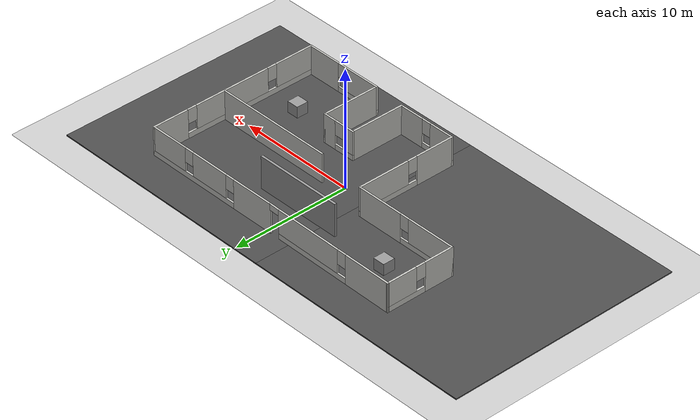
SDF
<sdf version="1.6">
 <world name="default">
  <light name="sun" type="directional">
   <pose>0 0 10 0 -0 0</pose>
   <diffuse>0.8 0.8 0.8 1</diffuse>
   <specular>0.1 0.1 0.1 1</specular>
   <attenuation>
    <range>1000</range>
    <constant>0.9</constant>
    <linear>0.01</linear>
    <quadratic>0.001</quadratic>
   </attenuation>
   <direction>-0.5 0.5 -1</direction>
  </light>
  <model name="ground_plane">
   <static>1</static>
   <link name="link">
    <collision name="collision">
     <geometry><plane><normal>0 0 1</normal><size>100 100</size></plane></geometry>
     <surface><friction><ode><mu>100</mu><mu2>50</mu2></ode></friction></surface>
    </collision>
    <visual name="visual">
     <cast_shadows>0</cast_shadows>
     <geometry><plane><normal>0 0 1</normal><size>100 100</size></plane></geometry>
     <material>
      <script><uri>file://media/materials/scripts/gazebo.material</uri><name>Gazebo/Grey</name></script>
     </material>
    </visual>
   </link>
  </model>
  <gravity>0 0 -9.8</gravity>
  <magnetic_field>6e-06 2.3e-05 -4.2e-05</magnetic_field>
  <atmosphere type="adiabatic"/>
  <physics name="default_physics" default="0" type="ode">
   <max_step_size>0.001</max_step_size>
   <real_time_factor>1</real_time_factor>
   <real_time_update_rate>1000</real_time_update_rate>
  </physics>
  <scene><ambient>0.4 0.4 0.4 1</ambient><background>0.7 0.7 0.7 1</background><shadows>1</shadows></scene>
  <spherical_coordinates>
   <surface_model>EARTH_WGS84</surface_model>
   <latitude_deg>0</latitude_deg>
   <longitude_deg>0</longitude_deg>
   <elevation>0</elevation>
   <heading_deg>0</heading_deg>
  </spherical_coordinates>
  <model name="room2">
   <pose>-0.198338 -0.063286 0 0 -0 0</pose>
   <link name="Wall_1">
    <pose>5.90032 7.24968 0 0 -0 0</pose>
    <visual name="Wall_1_Visual_0">
     <pose>-4.22159 0 1.25 0 -0 0</pose>
     <geometry><box><size>3.80681 0.15 2.5</size></box></geometry>
     <material>
      <script><uri>file://media/materials/scripts/gazebo.material</uri><name>Gazebo/CeilingTiled</name></script>
      <ambient>1 1 1 1</ambient>
     </material>
    </visual>
    <collision name="Wall_1_Collision_0">
     <geometry><box><size>3.80681 0.15 2.5</size></box></geometry>
     <pose>-4.22159 0 1.25 0 -0 0</pose>
    </collision>
    <visual name="Wall_1_Visual_1">
     <pose>1.90341 0 0.25 0 -0 0</pose>
     <geometry><box><size>8.44319 0.15 0.5</size></box></geometry>
     <material>
      <script><uri>file://media/materials/scripts/gazebo.material</uri><name>Gazebo/CeilingTiled</name></script>
      <ambient>1 1 1 1</ambient>
     </material>
    </visual>
    <collision name="Wall_1_Collision_1">
     <geometry><box><size>8.44319 0.15 0.5</size></box></geometry>
     <pose>1.90341 0 0.25 0 -0 0</pose>
    </collision>
    <visual name="Wall_1_Visual_2">
     <pose>0.204526 0 1.5 0 -0 0</pose>
     <geometry><box><size>3.44542 0.15 2</size></box></geometry>
     <material>
      <script><uri>file://media/materials/scripts/gazebo.material</uri><name>Gazebo/CeilingTiled</name></script>
      <ambient>1 1 1 1</ambient>
     </material>
    </visual>
    <collision name="Wall_1_Collision_2">
     <geometry><box><size>3.44542 0.15 2</size></box></geometry>
     <pose>0.204526 0 1.5 0 -0 0</pose>
    </collision>
    <visual name="Wall_1_Visual_3">
     <pose>4.42612 0 1.5 0 -0 0</pose>
     <geometry><box><size>3.39776 0.15 2</size></box></geometry>
     <material>
      <script><uri>file://media/materials/scripts/gazebo.material</uri><name>Gazebo/CeilingTiled</name></script>
      <ambient>1 1 1 1</ambient>
     </material>
    </visual>
    <collision name="Wall_1_Collision_3">
     <geometry><box><size>3.39776 0.15 2</size></box></geometry>
     <pose>4.42612 0 1.5 0 -0 0</pose>
    </collision>
    <visual name="Wall_1_Visual_4">
     <pose>-1.91819 0 1.9 0 -0 0</pose>
     <geometry><box><size>0.8 0.15 1.2</size></box></geometry>
     <material>
      <script><uri>file://media/materials/scripts/gazebo.material</uri><name>Gazebo/CeilingTiled</name></script>
      <ambient>1 1 1 1</ambient>
     </material>
    </visual>
    <collision name="Wall_1_Collision_4">
     <geometry><box><size>0.8 0.15 1.2</size></box></geometry>
     <pose>-1.91819 0 1.9 0 -0 0</pose>
    </collision>
    <visual name="Wall_1_Visual_5">
     <pose>2.32724 0 1.9 0 -0 0</pose>
     <geometry><box><size>0.8 0.15 1.2</size></box></geometry>
     <material>
      <script><uri>file://media/materials/scripts/gazebo.material</uri><name>Gazebo/CeilingTiled</name></script>
      <ambient>1 1 1 1</ambient>
     </material>
    </visual>
    <collision name="Wall_1_Collision_5">
     <geometry><box><size>0.8 0.15 1.2</size></box></geometry>
     <pose>2.32724 0 1.9 0 -0 0</pose>
    </collision>
   </link>
   <link name="Wall_10">
    <pose>-11.9497 4.42468 0 0 -0 1.5708</pose>
    <visual name="Wall_10_Visual_0">
     <pose>-1.71724 0 1.25 0 -0 0</pose>
     <geometry><box><size>2.56552 0.15 2.5</size></box></geometry>
     <material>
      <script><uri>file://media/materials/scripts/gazebo.material</uri><name>Gazebo/CeilingTiled</name></script>
      <ambient>1 1 1 1</ambient>
     </material>
    </visual>
    <collision name="Wall_10_Collision_0">
     <geometry><box><size>2.56552 0.15 2.5</size></box></geometry>
     <pose>-1.71724 0 1.25 0 -0 0</pose>
    </collision>
    <visual name="Wall_10_Visual_1">
     <pose>1.28276 0 0.25 0 -0 0</pose>
     <geometry><box><size>3.43448 0.15 0.5</size></box></geometry>
     <material>
      <script><uri>file://media/materials/scripts/gazebo.material</uri><name>Gazebo/CeilingTiled</name></script>
      <ambient>1 1 1 1</ambient>
     </material>
    </visual>
    <collision name="Wall_10_Collision_1">
     <geometry><box><size>3.43448 0.15 0.5</size></box></geometry>
     <pose>1.28276 0 0.25 0 -0 0</pose>
    </collision>
    <visual name="Wall_10_Visual_2">
     <pose>1.68276 0 1.5 0 -0 0</pose>
     <geometry><box><size>2.63448 0.15 2</size></box></geometry>
     <material>
      <script><uri>file://media/materials/scripts/gazebo.material</uri><name>Gazebo/CeilingTiled</name></script>
      <ambient>1 1 1 1</ambient>
     </material>
    </visual>
    <collision name="Wall_10_Collision_2">
     <geometry><box><size>2.63448 0.15 2</size></box></geometry>
     <pose>1.68276 0 1.5 0 -0 0</pose>
    </collision>
    <visual name="Wall_10_Visual_3">
     <pose>-0.034483 0 1.9 0 -0 0</pose>
     <geometry><box><size>0.8 0.15 1.2</size></box></geometry>
     <material>
      <script><uri>file://media/materials/scripts/gazebo.material</uri><name>Gazebo/CeilingTiled</name></script>
      <ambient>1 1 1 1</ambient>
     </material>
    </visual>
    <collision name="Wall_10_Collision_3">
     <geometry><box><size>0.8 0.15 1.2</size></box></geometry>
     <pose>-0.034483 0 1.9 0 -0 0</pose>
    </collision>
   </link>
   <link name="Wall_11">
    <pose>-6.04968 7.29968 0 0 0 -0.008474</pose>
    <visual name="Wall_11_Visual_0">
     <pose>-3.86345 0 1.25 0 -0 0</pose>
     <geometry><box><size>4.22353 0.15 2.5</size></box></geometry>
     <material>
      <script><uri>file://media/materials/scripts/gazebo.material</uri><name>Gazebo/CeilingTiled</name></script>
      <ambient>1 1 1 1</ambient>
     </material>
    </visual>
    <collision name="Wall_11_Collision_0">
     <geometry><box><size>4.22353 0.15 2.5</size></box></geometry>
     <pose>-3.86345 0 1.25 0 -0 0</pose>
    </collision>
    <visual name="Wall_11_Visual_1">
     <pose>1.63168 0 0.25 0 -0 0</pose>
     <geometry><box><size>6.76674 0.15 0.5</size></box></geometry>
     <material>
      <script><uri>file://media/materials/scripts/gazebo.material</uri><name>Gazebo/CeilingTiled</name></script>
      <ambient>1 1 1 1</ambient>
     </material>
    </visual>
    <collision name="Wall_11_Collision_1">
     <geometry><box><size>6.76674 0.15 0.5</size></box></geometry>
     <pose>1.63168 0 0.25 0 -0 0</pose>
    </collision>
    <visual name="Wall_11_Visual_2">
     <pose>2.03168 0 1.5 0 -0 0</pose>
     <geometry><box><size>5.96674 0.15 2</size></box></geometry>
     <material>
      <script><uri>file://media/materials/scripts/gazebo.material</uri><name>Gazebo/CeilingTiled</name></script>
      <ambient>1 1 1 1</ambient>
     </material>
    </visual>
    <collision name="Wall_11_Collision_2">
     <geometry><box><size>5.96674 0.15 2</size></box></geometry>
     <pose>2.03168 0 1.5 0 -0 0</pose>
    </collision>
    <visual name="Wall_11_Visual_3">
     <pose>-1.35169 0 1.9 0 -0 0</pose>
     <geometry><box><size>0.8 0.15 1.2</size></box></geometry>
     <material>
      <script><uri>file://media/materials/scripts/gazebo.material</uri><name>Gazebo/CeilingTiled</name></script>
      <ambient>1 1 1 1</ambient>
     </material>
    </visual>
    <collision name="Wall_11_Collision_3">
     <geometry><box><size>0.8 0.15 1.2</size></box></geometry>
     <pose>-1.35169 0 1.9 0 -0 0</pose>
    </collision>
    <visual name="Wall_11_Visual_4">
     <pose>5.49513 0 2.25 0 -0 0</pose>
     <geometry><box><size>0.960159 0.15 0.5</size></box></geometry>
     <material>
      <script><uri>file://media/materials/scripts/gazebo.material</uri><name>Gazebo/CeilingTiled</name></script>
      <ambient>1 1 1 1</ambient>
     </material>
    </visual>
    <collision name="Wall_11_Collision_4">
     <geometry><box><size>0.960159 0.15 0.5</size></box></geometry>
     <pose>5.49513 0 2.25 0 -0 0</pose>
    </collision>
   </link>
   <link name="Wall_13">
    <collision name="Wall_13_Collision">
     <geometry><box><size>10.25 0.15 2.5</size></box></geometry>
     <pose>0 0 1.25 0 -0 0</pose>
    </collision>
    <visual name="Wall_13_Visual">
     <pose>0 0 1.25 0 -0 0</pose>
     <geometry><box><size>10.25 0.15 2.5</size></box></geometry>
     <material>
      <script><uri>file://media/materials/scripts/gazebo.material</uri><name>Gazebo/CeilingTiled</name></script>
      <ambient>1 1 1 1</ambient>
     </material>
    </visual>
    <pose>6.82962 0.798425 0 0 -0 3.14159</pose>
   </link>
   <link name="Wall_2">
    <pose>11.9503 -0.050316 0 0 0 -1.5708</pose>
    <visual name="Wall_2_Visual_0">
     <pose>-5.83088 0 1.25 0 -0 0</pose>
     <geometry><box><size>3.08823 0.15 2.5</size></box></geometry>
     <material>
      <script><uri>file://media/materials/scripts/gazebo.material</uri><name>Gazebo/CeilingTiled</name></script>
      <ambient>1 1 1 1</ambient>
     </material>
    </visual>
    <collision name="Wall_2_Collision_0">
     <geometry><box><size>3.08823 0.15 2.5</size></box></geometry>
     <pose>-5.83088 0 1.25 0 -0 0</pose>
    </collision>
    <visual name="Wall_2_Visual_1">
     <pose>1.54412 0 0.25 0 -0 0</pose>
     <geometry><box><size>11.6618 0.15 0.5</size></box></geometry>
     <material>
      <script><uri>file://media/materials/scripts/gazebo.material</uri><name>Gazebo/CeilingTiled</name></script>
      <ambient>1 1 1 1</ambient>
     </material>
    </visual>
    <collision name="Wall_2_Collision_1">
     <geometry><box><size>11.6618 0.15 0.5</size></box></geometry>
     <pose>1.54412 0 0.25 0 -0 0</pose>
    </collision>
    <visual name="Wall_2_Visual_2">
     <pose>-0.164329 0 1.5 0 -0 0</pose>
     <geometry><box><size>6.64487 0.15 2</size></box></geometry>
     <material>
      <script><uri>file://media/materials/scripts/gazebo.material</uri><name>Gazebo/CeilingTiled</name></script>
      <ambient>1 1 1 1</ambient>
     </material>
    </visual>
    <collision name="Wall_2_Collision_2">
     <geometry><box><size>6.64487 0.15 2</size></box></geometry>
     <pose>-0.164329 0 1.5 0 -0 0</pose>
    </collision>
    <visual name="Wall_2_Visual_3">
     <pose>5.66655 0 1.5 0 -0 0</pose>
     <geometry><box><size>3.41689 0.15 2</size></box></geometry>
     <material>
      <script><uri>file://media/materials/scripts/gazebo.material</uri><name>Gazebo/CeilingTiled</name></script>
      <ambient>1 1 1 1</ambient>
     </material>
    </visual>
    <collision name="Wall_2_Collision_3">
     <geometry><box><size>3.41689 0.15 2</size></box></geometry>
     <pose>5.66655 0 1.5 0 -0 0</pose>
    </collision>
    <visual name="Wall_2_Visual_4">
     <pose>-3.88677 0 1.9 0 -0 0</pose>
     <geometry><box><size>0.8 0.15 1.2</size></box></geometry>
     <material>
      <script><uri>file://media/materials/scripts/gazebo.material</uri><name>Gazebo/CeilingTiled</name></script>
      <ambient>1 1 1 1</ambient>
     </material>
    </visual>
    <collision name="Wall_2_Collision_4">
     <geometry><box><size>0.8 0.15 1.2</size></box></geometry>
     <pose>-3.88677 0 1.9 0 -0 0</pose>
    </collision>
    <visual name="Wall_2_Visual_5">
     <pose>3.55811 0 1.9 0 -0 0</pose>
     <geometry><box><size>0.8 0.15 1.2</size></box></geometry>
     <material>
      <script><uri>file://media/materials/scripts/gazebo.material</uri><name>Gazebo/CeilingTiled</name></script>
      <ambient>1 1 1 1</ambient>
     </material>
    </visual>
    <collision name="Wall_2_Collision_5">
     <geometry><box><size>0.8 0.15 1.2</size></box></geometry>
     <pose>3.55811 0 1.9 0 -0 0</pose>
    </collision>
   </link>
   <link name="Wall_3">
    <pose>8.52532 -7.35032 0 0 -0 3.14159</pose>
    <visual name="Wall_3_Visual_0">
     <pose>-1.9857 0 1.25 0 -0 0</pose>
     <geometry><box><size>3.0286 0.15 2.5</size></box></geometry>
     <material>
      <script><uri>file://media/materials/scripts/gazebo.material</uri><name>Gazebo/CeilingTiled</name></script>
      <ambient>1 1 1 1</ambient>
     </material>
    </visual>
    <collision name="Wall_3_Collision_0">
     <geometry><box><size>3.0286 0.15 2.5</size></box></geometry>
     <pose>-1.9857 0 1.25 0 -0 0</pose>
    </collision>
    <visual name="Wall_3_Visual_1">
     <pose>1.5143 0 0.25 0 -0 0</pose>
     <geometry><box><size>3.9714 0.15 0.5</size></box></geometry>
     <material>
      <script><uri>file://media/materials/scripts/gazebo.material</uri><name>Gazebo/CeilingTiled</name></script>
      <ambient>1 1 1 1</ambient>
     </material>
    </visual>
    <collision name="Wall_3_Collision_1">
     <geometry><box><size>3.9714 0.15 0.5</size></box></geometry>
     <pose>1.5143 0 0.25 0 -0 0</pose>
    </collision>
    <visual name="Wall_3_Visual_2">
     <pose>1.9143 0 1.5 0 -0 0</pose>
     <geometry><box><size>3.17141 0.15 2</size></box></geometry>
     <material>
      <script><uri>file://media/materials/scripts/gazebo.material</uri><name>Gazebo/CeilingTiled</name></script>
      <ambient>1 1 1 1</ambient>
     </material>
    </visual>
    <collision name="Wall_3_Collision_2">
     <geometry><box><size>3.17141 0.15 2</size></box></geometry>
     <pose>1.9143 0 1.5 0 -0 0</pose>
    </collision>
    <visual name="Wall_3_Visual_3">
     <pose>-0.071405 0 1.9 0 -0 0</pose>
     <geometry><box><size>0.8 0.15 1.2</size></box></geometry>
     <material>
      <script><uri>file://media/materials/scripts/gazebo.material</uri><name>Gazebo/CeilingTiled</name></script>
      <ambient>1 1 1 1</ambient>
     </material>
    </visual>
    <collision name="Wall_3_Collision_3">
     <geometry><box><size>0.8 0.15 1.2</size></box></geometry>
     <pose>-0.071405 0 1.9 0 -0 0</pose>
    </collision>
   </link>
   <link name="Wall_4">
    <collision name="Wall_4_Collision">
     <geometry><box><size>5 0.15 2.5</size></box></geometry>
     <pose>0 0 1.25 0 -0 0</pose>
    </collision>
    <visual name="Wall_4_Visual">
     <pose>0 0 1.25 0 -0 0</pose>
     <geometry><box><size>5 0.15 2.5</size></box></geometry>
     <material>
      <script><uri>file://media/materials/scripts/gazebo.material</uri><name>Gazebo/CeilingTiled</name></script>
      <ambient>1 1 1 1</ambient>
     </material>
    </visual>
    <pose>5.10032 -4.92532 0 0 -0 1.5708</pose>
   </link>
   <link name="Wall_5">
    <pose>3.67532 -2.50032 0 0 -0 3.14159</pose>
    <visual name="Wall_5_Visual_0">
     <pose>-0.918824 0 1.25 0 -0 0</pose>
     <geometry><box><size>1.16235 0.15 2.5</size></box></geometry>
     <material>
      <script><uri>file://media/materials/scripts/gazebo.material</uri><name>Gazebo/CeilingTiled</name></script>
      <ambient>1 1 1 1</ambient>
     </material>
    </visual>
    <collision name="Wall_5_Collision_0">
     <geometry><box><size>1.16235 0.15 2.5</size></box></geometry>
     <pose>-0.918824 0 1.25 0 -0 0</pose>
    </collision>
    <visual name="Wall_5_Visual_1">
     <pose>0.581176 0 0.25 0 -0 0</pose>
     <geometry><box><size>1.83765 0.15 0.5</size></box></geometry>
     <material>
      <script><uri>file://media/materials/scripts/gazebo.material</uri><name>Gazebo/CeilingTiled</name></script>
      <ambient>1 1 1 1</ambient>
     </material>
    </visual>
    <collision name="Wall_5_Collision_1">
     <geometry><box><size>1.83765 0.15 0.5</size></box></geometry>
     <pose>0.581176 0 0.25 0 -0 0</pose>
    </collision>
    <visual name="Wall_5_Visual_2">
     <pose>0.981176 0 1.5 0 -0 0</pose>
     <geometry><box><size>1.03765 0.15 2</size></box></geometry>
     <material>
      <script><uri>file://media/materials/scripts/gazebo.material</uri><name>Gazebo/CeilingTiled</name></script>
      <ambient>1 1 1 1</ambient>
     </material>
    </visual>
    <collision name="Wall_5_Collision_2">
     <geometry><box><size>1.03765 0.15 2</size></box></geometry>
     <pose>0.981176 0 1.5 0 -0 0</pose>
    </collision>
    <visual name="Wall_5_Visual_3">
     <pose>0.062353 0 1.9 0 -0 0</pose>
     <geometry><box><size>0.8 0.15 1.2</size></box></geometry>
     <material>
      <script><uri>file://media/materials/scripts/gazebo.material</uri><name>Gazebo/CeilingTiled</name></script>
      <ambient>1 1 1 1</ambient>
     </material>
    </visual>
    <collision name="Wall_5_Collision_3">
     <geometry><box><size>0.8 0.15 1.2</size></box></geometry>
     <pose>0.062353 0 1.9 0 -0 0</pose>
    </collision>
   </link>
   <link name="Wall_6">
    <collision name="Wall_6_Collision">
     <geometry><box><size>4.75 0.15 2.5</size></box></geometry>
     <pose>0 0 1.25 0 -0 0</pose>
    </collision>
    <visual name="Wall_6_Visual">
     <pose>0 0 1.25 0 -0 0</pose>
     <geometry><box><size>4.75 0.15 2.5</size></box></geometry>
     <material>
      <script><uri>file://media/materials/scripts/gazebo.material</uri><name>Gazebo/CeilingTiled</name></script>
      <ambient>1 1 1 1</ambient>
     </material>
    </visual>
    <pose>2.25032 -4.80032 0 0 0 -1.5708</pose>
   </link>
   <link name="Wall_7">
    <pose>-0.299684 -7.10032 0 0 -0 3.14159</pose>
    <visual name="Wall_7_Visual_0">
     <pose>-1.49993 0 1.25 0 -0 0</pose>
     <geometry><box><size>2.25014 0.15 2.5</size></box></geometry>
     <material>
      <script><uri>file://media/materials/scripts/gazebo.material</uri><name>Gazebo/CeilingTiled</name></script>
      <ambient>1 1 1 1</ambient>
     </material>
    </visual>
    <collision name="Wall_7_Collision_0">
     <geometry><box><size>2.25014 0.15 2.5</size></box></geometry>
     <pose>-1.49993 0 1.25 0 -0 0</pose>
    </collision>
    <visual name="Wall_7_Visual_1">
     <pose>1.12507 0 0.25 0 -0 0</pose>
     <geometry><box><size>2.99986 0.15 0.5</size></box></geometry>
     <material>
      <script><uri>file://media/materials/scripts/gazebo.material</uri><name>Gazebo/CeilingTiled</name></script>
      <ambient>1 1 1 1</ambient>
     </material>
    </visual>
    <collision name="Wall_7_Collision_1">
     <geometry><box><size>2.99986 0.15 0.5</size></box></geometry>
     <pose>1.12507 0 0.25 0 -0 0</pose>
    </collision>
    <visual name="Wall_7_Visual_2">
     <pose>1.52507 0 1.5 0 -0 0</pose>
     <geometry><box><size>2.19986 0.15 2</size></box></geometry>
     <material>
      <script><uri>file://media/materials/scripts/gazebo.material</uri><name>Gazebo/CeilingTiled</name></script>
      <ambient>1 1 1 1</ambient>
     </material>
    </visual>
    <collision name="Wall_7_Collision_2">
     <geometry><box><size>2.19986 0.15 2</size></box></geometry>
     <pose>1.52507 0 1.5 0 -0 0</pose>
    </collision>
    <visual name="Wall_7_Visual_3">
     <pose>0.025137 0 1.9 0 -0 0</pose>
     <geometry><box><size>0.8 0.15 1.2</size></box></geometry>
     <material>
      <script><uri>file://media/materials/scripts/gazebo.material</uri><name>Gazebo/CeilingTiled</name></script>
      <ambient>1 1 1 1</ambient>
     </material>
    </visual>
    <collision name="Wall_7_Collision_3">
     <geometry><box><size>0.8 0.15 1.2</size></box></geometry>
     <pose>0.025137 0 1.9 0 -0 0</pose>
    </collision>
   </link>
   <link name="Wall_8">
    <pose>-2.84968 -2.80032 0 0 -0 1.5708</pose>
    <visual name="Wall_8_Visual_0">
     <pose>-2.6685 0 1.25 0 -0 0</pose>
     <geometry><box><size>3.413 0.15 2.5</size></box></geometry>
     <material>
      <script><uri>file://media/materials/scripts/gazebo.material</uri><name>Gazebo/CeilingTiled</name></script>
      <ambient>1 1 1 1</ambient>
     </material>
    </visual>
    <collision name="Wall_8_Collision_0">
     <geometry><box><size>3.413 0.15 2.5</size></box></geometry>
     <pose>-2.6685 0 1.25 0 -0 0</pose>
    </collision>
    <visual name="Wall_8_Visual_1">
     <pose>1.7065 0 0.25 0 -0 0</pose>
     <geometry><box><size>5.337 0.15 0.5</size></box></geometry>
     <material>
      <script><uri>file://media/materials/scripts/gazebo.material</uri><name>Gazebo/CeilingTiled</name></script>
      <ambient>1 1 1 1</ambient>
     </material>
    </visual>
    <collision name="Wall_8_Collision_1">
     <geometry><box><size>5.337 0.15 0.5</size></box></geometry>
     <pose>1.7065 0 0.25 0 -0 0</pose>
    </collision>
    <visual name="Wall_8_Visual_2">
     <pose>2.1065 0 1.5 0 -0 0</pose>
     <geometry><box><size>4.537 0.15 2</size></box></geometry>
     <material>
      <script><uri>file://media/materials/scripts/gazebo.material</uri><name>Gazebo/CeilingTiled</name></script>
      <ambient>1 1 1 1</ambient>
     </material>
    </visual>
    <collision name="Wall_8_Collision_2">
     <geometry><box><size>4.537 0.15 2</size></box></geometry>
     <pose>2.1065 0 1.5 0 -0 0</pose>
    </collision>
    <visual name="Wall_8_Visual_3">
     <pose>-0.561996 0 1.9 0 -0 0</pose>
     <geometry><box><size>0.8 0.15 1.2</size></box></geometry>
     <material>
      <script><uri>file://media/materials/scripts/gazebo.material</uri><name>Gazebo/CeilingTiled</name></script>
      <ambient>1 1 1 1</ambient>
     </material>
    </visual>
    <collision name="Wall_8_Collision_3">
     <geometry><box><size>0.8 0.15 1.2</size></box></geometry>
     <pose>-0.561996 0 1.9 0 -0 0</pose>
    </collision>
   </link>
   <link name="Wall_9">
    <pose>-7.39968 1.49968 0 0 -0 3.14159</pose>
    <visual name="Wall_9_Visual_0">
     <pose>-2.54284 0 1.25 0 -0 0</pose>
     <geometry><box><size>4.16432 0.15 2.5</size></box></geometry>
     <material>
      <script><uri>file://media/materials/scripts/gazebo.material</uri><name>Gazebo/CeilingTiled</name></script>
      <ambient>1 1 1 1</ambient>
     </material>
    </visual>
    <collision name="Wall_9_Collision_0">
     <geometry><box><size>4.16432 0.15 2.5</size></box></geometry>
     <pose>-2.54284 0 1.25 0 -0 0</pose>
    </collision>
    <visual name="Wall_9_Visual_1">
     <pose>2.08216 0 0.25 0 -0 0</pose>
     <geometry><box><size>5.08568 0.15 0.5</size></box></geometry>
     <material>
      <script><uri>file://media/materials/scripts/gazebo.material</uri><name>Gazebo/CeilingTiled</name></script>
      <ambient>1 1 1 1</ambient>
     </material>
    </visual>
    <collision name="Wall_9_Collision_1">
     <geometry><box><size>5.08568 0.15 0.5</size></box></geometry>
     <pose>2.08216 0 0.25 0 -0 0</pose>
    </collision>
    <visual name="Wall_9_Visual_2">
     <pose>2.48216 0 1.5 0 -0 0</pose>
     <geometry><box><size>4.28568 0.15 2</size></box></geometry>
     <material>
      <script><uri>file://media/materials/scripts/gazebo.material</uri><name>Gazebo/CeilingTiled</name></script>
      <ambient>1 1 1 1</ambient>
     </material>
    </visual>
    <collision name="Wall_9_Collision_2">
     <geometry><box><size>4.28568 0.15 2</size></box></geometry>
     <pose>2.48216 0 1.5 0 -0 0</pose>
    </collision>
    <visual name="Wall_9_Visual_3">
     <pose>-0.060685 0 1.9 0 -0 0</pose>
     <geometry><box><size>0.8 0.15 1.2</size></box></geometry>
     <material>
      <script><uri>file://media/materials/scripts/gazebo.material</uri><name>Gazebo/CeilingTiled</name></script>
      <ambient>1 1 1 1</ambient>
     </material>
    </visual>
    <collision name="Wall_9_Collision_3">
     <geometry><box><size>0.8 0.15 1.2</size></box></geometry>
     <pose>-0.060685 0 1.9 0 -0 0</pose>
    </collision>
   </link>
   <static>1</static>
  </model>
  <model name="grey_wall">
   <static>1</static>
   <link name="link">
    <pose>0 0 1.4 0 -0 0</pose>
    <collision name="collision"><geometry><box><size>7.5 0.2 2.8</size></box></geometry></collision>
    <visual name="visual">
     <cast_shadows>0</cast_shadows>
     <geometry><box><size>7.5 0.2 2.8</size></box></geometry>
     <material>
      <script>
       <uri>model://grey_wall/materials/scripts</uri>
       <uri>model://grey_wall/materials/textures</uri>
       <name>vrc/grey_wall</name>
      </script>
     </material>
    </visual>
   </link>
   <pose>0.108419 4.22563 0 0 -0 0</pose>
  </model>
  <model name="asphalt_plane">
   <static>1</static>
   <link name="link">
    <collision name="collision"><geometry><box><size>20 20 0.1</size></box></geometry></collision>
    <visual name="visual">
     <cast_shadows>0</cast_shadows>
     <geometry><box><size>20 20 0.1</size></box></geometry>
     <material>
      <script>
       <uri>model://asphalt_plane/materials/scripts</uri>
       <uri>model://asphalt_plane/materials/textures</uri>
       <name>vrc/asphalt</name>
      </script>
     </material>
    </visual>
   </link>
   <pose>7.78262 0.199841 0 0 -0 0</pose>
  </model>
  <model name="asphalt_plane_0">
   <static>1</static>
   <link name="link">
    <collision name="collision"><geometry><box><size>20 20 0.1</size></box></geometry></collision>
    <visual name="visual">
     <cast_shadows>0</cast_shadows>
     <geometry><box><size>20 20 0.1</size></box></geometry>
     <material>
      <script>
       <uri>model://asphalt_plane/materials/scripts</uri>
       <uri>model://asphalt_plane/materials/textures</uri>
       <name>vrc/asphalt</name>
      </script>
     </material>
    </visual>
   </link>
   <pose>-11.8453 0.197352 0 0 -0 0</pose>
  </model>
  <model name="unit_box_0">
   <pose>-8.56196 4.30555 0.5 0 -0 0</pose>
   <link name="link">
    <inertial>
     <mass>1</mass>
     <inertia>
      <ixx>0.166667</ixx>
      <ixy>0</ixy>
      <ixz>0</ixz>
      <iyy>0.166667</iyy>
      <iyz>0</iyz>
      <izz>0.166667</izz>
     </inertia>
    </inertial>
    <collision name="collision"><geometry><box><size>1 1 1</size></box></geometry></collision>
    <visual name="visual">
     <geometry><box><size>1 1 1</size></box></geometry>
     <material>
      <script><name>Gazebo/Grey</name><uri>file://media/materials/scripts/gazebo.material</uri></script>
     </material>
    </visual>
   </link>
  </model>
  <model name="unit_box_1">
   <pose>8.86168 -3.5353 0.5 0 -0 0</pose>
   <link name="link">
    <inertial>
     <mass>1</mass>
     <inertia>
      <ixx>0.166667</ixx>
      <ixy>0</ixy>
      <ixz>0</ixz>
      <iyy>0.166667</iyy>
      <iyz>0</iyz>
      <izz>0.166667</izz>
     </inertia>
    </inertial>
    <collision name="collision"><geometry><box><size>1 1 1</size></box></geometry></collision>
    <visual name="visual">
     <geometry><box><size>1 1 1</size></box></geometry>
     <material>
      <script><name>Gazebo/Grey</name><uri>file://media/materials/scripts/gazebo.material</uri></script>
     </material>
    </visual>
   </link>
  </model>
 </world>
</sdf>
